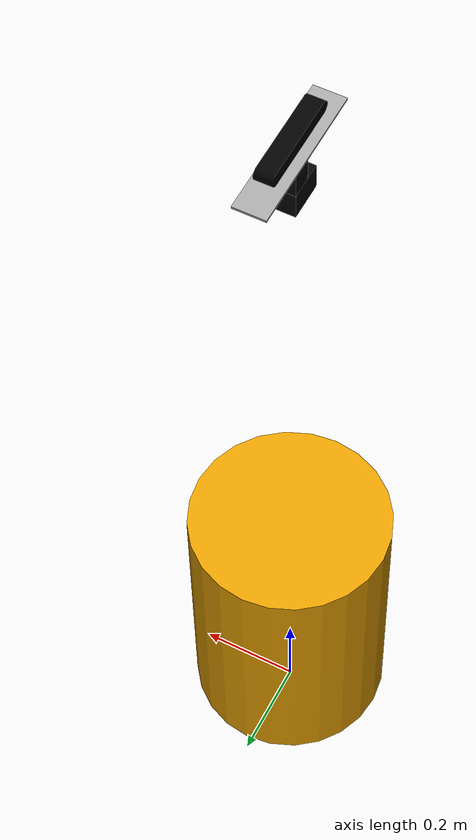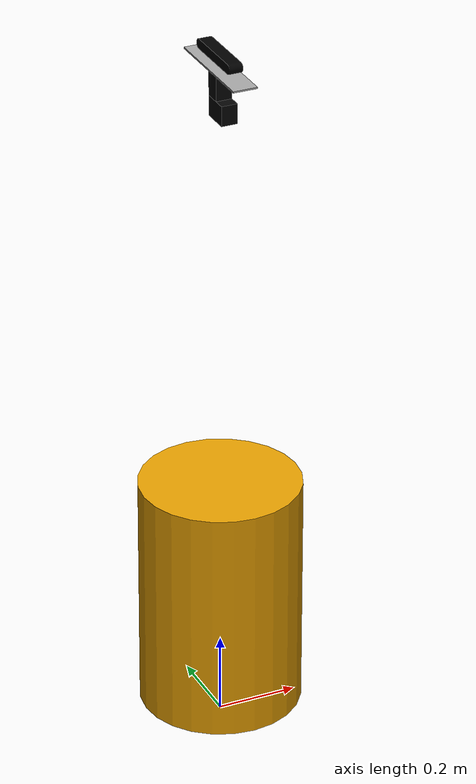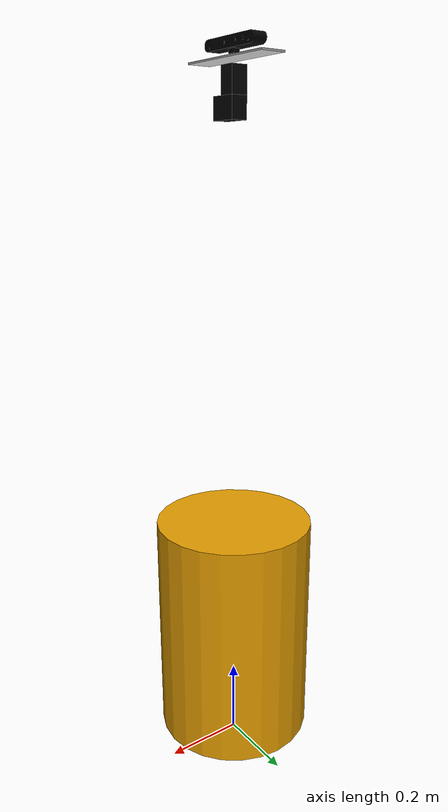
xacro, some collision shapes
<?xml version="1.0" ?>
<robot name="scitosA5"
       xmlns:controller="http://playerstage.sourceforge.net/gazebo/xmlschema/#controller"
       xmlns:interface="http://playerstage.sourceforge.net/gazebo/xmlschema/#interface"
       xmlns:joint="http://playerstage.sourceforge.net/gazebo/xmlschema/#slider"
       xmlns:sensor="http://playerstage.sourceforge.net/gazebo/xmlschema/#sensor"
       xmlns:xacro="http://ros.org/wiki/xacro">

  <!-- calibration params -->
  <!-- front laser -->
  <property name="front_laser_scan_trans_x" value="0.30" />
  <property name="front_laser_scan_trans_y" value="0" />
  <property name="front_laser_scan_trans_z" value="0.386" />
  <property name="front_laser_scan_rot_x" value="0.0" />
  <property name="front_laser_scan_rot_y" value="0.0" />
  <property name="front_laser_scan_rot_z" value="0.0" />

  <!-- the pan tilt unit -->
  <property name="pan_tilt_base_plate_trans_x" value="0.0" />
  <property name="pan_tilt_base_plate_trans_y" value="0.0" />
  <property name="pan_tilt_base_plate_trans_z" value="1.585" />
  <property name="pan_tilt_base_plate_rot_x" value="0.0" />
  <property name="pan_tilt_base_plate_rot_y" value="0.0" />
  <property name="pan_tilt_base_plate_rot_z" value="0.0" />

  <!-- the head_xtion relative to the ptu top mount frame -->
  <property name="head_xtion_trans_x" value="0.0" />
  <property name="head_xtion_trans_y" value="0.0" />
  <property name="head_xtion_trans_z" value="0.03" />
  <property name="head_xtion_rot_x" value="3.14" />
  <property name="head_xtion_rot_y" value="0.0" />
  <property name="head_xtion_rot_z" value="0.0" />

  <!-- video camera relative to the ptu top mount frame -->
  <property name="head_stereo_trans_x" value="0" />
  <property name="head_stereo_trans_y" value="0" />
  <property name="head_stereo_trans_z" value="0.03" />
  <property name="head_stereo_rot_x" value="3.14" />
  <property name="head_stereo_rot_y" value="0.0" />
  <property name="head_stereo_rot_z" value="0.0" />

  <!-- materials -->
  <material name="Red">
    <color rgba="0.8 0.0 0.0 1.0"/>
  </material>
  <material name="Black">
    <color rgba="0.02 0.02 0.02 1.0"/>
  </material>
  <material name="Aluminium">
    <color rgba="0.65 0.65 0.65 1.0"/>
  </material>

  <!-- Base link is the actual robot body -->
  <link name="base_link">
    <inertial>
      <mass value="74.5"/>
      <origin xyz="-0.061 0.0 0.1465"/>
      <inertia ixx="5.652232699207" ixy="-0.009719934438" ixz="1.293988226423" iyy="5.669473158652" iyz="-0.007379583694" izz="3.683196351726"/>
    </inertial>
    <visual>
      <origin rpy="0 0 0" xyz="0 0 0.0"/>
      <geometry>
	<mesh filename="package://scitos_description/meshes/scitos.dae"/>
      </geometry>
    </visual>
    <collision>
      <origin rpy="0 0 0" xyz="0 0 0.3"/>
      <geometry>
        <cylinder length="0.6" radius="0.2"/>
      </geometry>
    </collision>
  </link>

  <!-- base_footprint : a fictional link that is on the floor plane, needed for move_base -->
  <link name="base_footprint">
    <inertial>
      <mass value="1.0"/>
      <origin xyz="0 0 0"/>
      <inertia ixx="0.01" ixy="0.0" ixz="0.0" iyy="0.01" iyz="0.0" izz="0.01"/>
    </inertial>
    <visual>
      <origin rpy="0 0 0" xyz="0 0 0"/>
      <geometry>
        <box size="0 0 0"/>
      </geometry>
      <material name="Red"/>
    </visual>
    <collision>
      <origin rpy="0 0 0" xyz="0 0 0.071"/>
      <geometry>
        <box size="0 0 0"/>
      </geometry>
    </collision>
  </link>

  <!-- Base footprint -> base_link -->
  <joint name="base_footprint_joint" type="fixed">
    <origin rpy="0 0 0" xyz="0 0 0.051"/>
    <child link="base_link"/>
    <parent link="base_footprint"/>
  </joint>

  <!-- base_link -> base_laser_link -->
  <joint name="base_laser_joint" type="fixed">
    <axis xyz="0 1 0"/>
    <origin rpy="${front_laser_scan_rot_x} ${front_laser_scan_rot_y} ${front_laser_scan_rot_z}"
	    xyz="${front_laser_scan_trans_x} ${front_laser_scan_trans_y} ${front_laser_scan_trans_z}"  />
    <parent link="base_link"/>
    <child link="base_laser_link"/>
  </joint>

  <!-- the laser -->
  <link name="base_laser_link" type="laser">
    <inertial>
      <mass value="0.001"/>
      <origin rpy="0 0 0" xyz="0 0 0"/>
      <inertia ixx="0.0001" ixy="0" ixz="0" iyy="0.000001" iyz="0" izz="0.0001"/>
    </inertial>
  </link>

  <!-- Pan-Tilt lower motor -->
  <link name="ptu_pan_motor">
    <inertial>
      <mass value="1"/>
      <inertia ixx="100" ixy="0" ixz="0" iyy="100" iyz="0" izz="100"/>
      <origin/>
    </inertial>
    <visual>
      <origin xyz="0 -0.015 0"/>
      <geometry>
        <box size="0.04 .07 .05"/>
      </geometry>
      <material name="Black"/>
    </visual>
    <collision>
      <origin xyz="0 0.015 0"/>
      <geometry>
        <box size="0.04 .07 .05"/>
      </geometry>
    </collision>
  </link>

  <!-- base_link -> pantilt -->
  <joint name="pantilt_joint" type="fixed">
    <origin rpy="${pan_tilt_base_plate_rot_x} ${pan_tilt_base_plate_rot_y} ${pan_tilt_base_plate_rot_z}"
	    xyz="${pan_tilt_base_plate_trans_x} ${pan_tilt_base_plate_trans_y} ${pan_tilt_base_plate_trans_z}"/>
    <parent link="base_link"/>
    <child link="ptu_pan_motor"/>
  </joint>

  <!-- pantilt upper motor -->
  <link name="ptu_tilt_motor">
    <inertial>
      <mass value="1"/>
      <inertia ixx="100" ixy="0" ixz="0" iyy="100" iyz="0" izz="100"/>
      <origin/>
    </inertial>
    <visual>
      <origin/>
      <geometry>
        <box size="0.04 .04 .06"/>
      </geometry>
      <material name="Black"/>
    </visual>
    <collision>
      <origin/>
      <geometry>
        <box size="0.04 .04 .06"/>
      </geometry>
    </collision>
  </link>

  <!-- pan joint -->
  <joint name="pan" type="continuous">
    <origin xyz="0 0 .055"/>
    <axis xyz="0 0 1"/>
    <parent link="ptu_pan_motor"/>
    <child link="ptu_tilt_motor"/>
  </joint>

  <!-- the top aluminium plate on the ptu unit -->
  <link name="ptu_mount">
    <inertial>
      <mass value="1"/>
      <inertia ixx="100" ixy="0" ixz="0" iyy="100" iyz="0" izz="100"/>
      <origin/>
    </inertial>
    <visual>
      <origin/>
      <geometry>
        <box size=" .06 .27 0.004 "/>
      </geometry>
      <material name="Aluminium"/>
    </visual>
    <collision>
      <origin/>
      <geometry>
        <box size=" .03 .27 .004"/>
      </geometry>
    </collision>
  </link>

  <!-- tilt joint -->
  <joint name="tilt" type="continuous">
    <origin xyz="0 0 .043"/>
    <axis xyz="0 -1 0"/>
    <parent link="ptu_tilt_motor"/>
    <child link="ptu_mount"/>
  </joint>

  <!-- xtion camera on head -->
  <link name="head_xtion_link">
    <inertial>
      <mass value="1.0"/>
      <origin xyz="0 0 0"/>
      <inertia ixx="0.01" ixy="0.0" ixz="0.0" iyy="0.01" iyz="0.0" izz="0.01"/>
    </inertial>
    <visual>
      <origin rpy="0 0 0" xyz="0 0 0"/>
      <geometry>
        <mesh filename="package://scitos_description/meshes/xtion.dae"/>
      </geometry>
    </visual>
    <collision>
      <origin rpy="0 0 0" xyz="0 0 0.071"/>
      <geometry>
        <box size="0.001 0.001 0.001"/>
      </geometry>
    </collision>
  </link>

  <!-- ptu plate -> xtion -->
  <joint name="head_xtion_joint" type="fixed" >
    <origin rpy="${head_xtion_rot_x} ${head_xtion_rot_y} ${head_xtion_rot_z}"
	    xyz="${head_xtion_trans_x} ${head_xtion_trans_y} ${head_xtion_trans_z}" />
    <axis xyz="0 0 1"/>
    <parent link="ptu_mount"/>
    <child link="head_xtion_link"/>
  </joint>

</robot>
